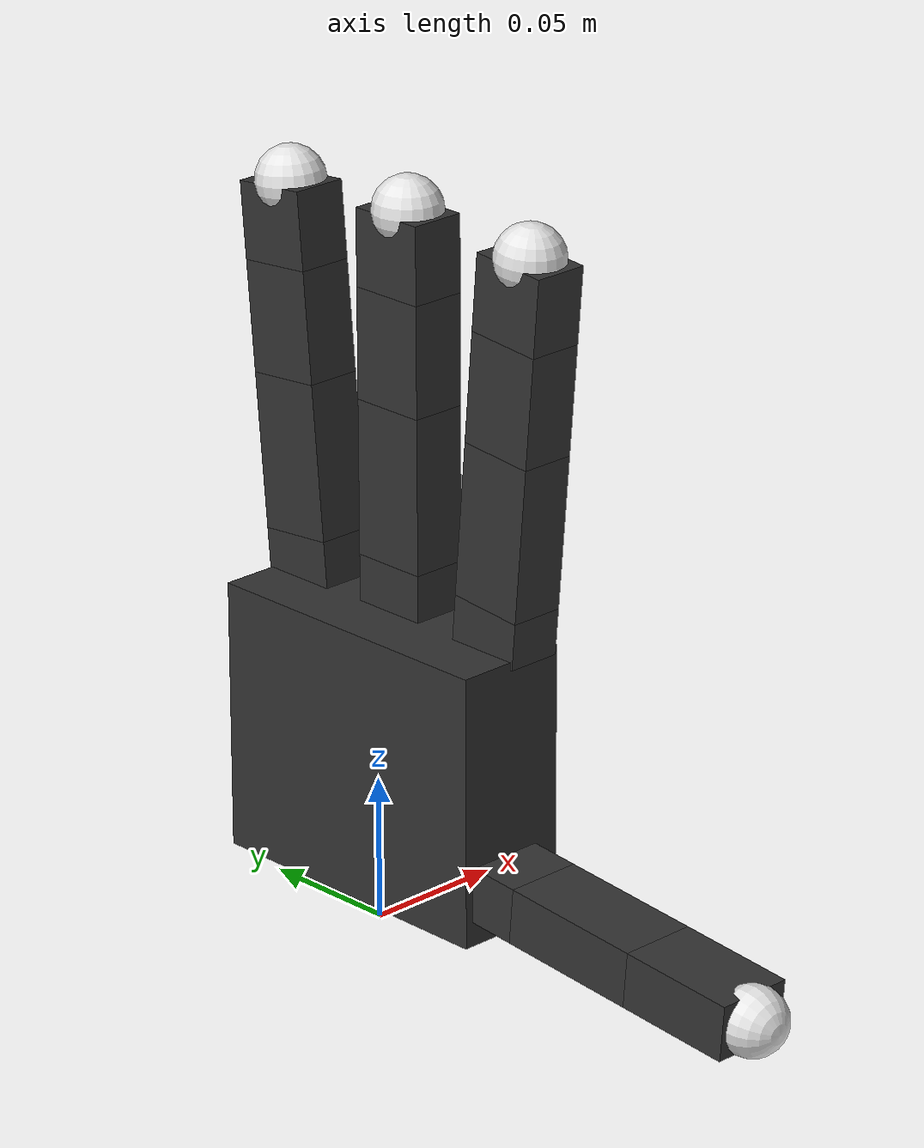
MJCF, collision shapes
<!-- original one, which is generated by ~/.mujoco/mujoco210/bin/compile allegro_left_amount_mujoco_compile.urdf allegro_left_amount.xml -->
<mujoco model="allegro_hand_left">
    <compiler angle="radian" meshdir="meshes/" />
    <size njmax="500" nconmax="100" />
    <asset>
        <mesh name="allegro_mount" file="allegro_mount.stl" />
        <mesh name="base_link_left" file="base_link_left.STL" />
        <mesh name="link_0.0" file="link_0.0.STL" />
        <mesh name="link_1.0" file="link_1.0.STL" />
        <mesh name="link_2.0" file="link_2.0.STL" />
        <mesh name="link_3.0" file="link_3.0.STL" />
        <mesh name="link_3.0_tip" file="link_3.0_tip.STL" />
        <mesh name="link_12.0_left" file="link_12.0_left.STL" />
        <mesh name="link_13.0" file="link_13.0.STL" />
        <mesh name="link_14.0" file="link_14.0.STL" />
        <mesh name="link_15.0" file="link_15.0.STL" />
        <mesh name="link_15.0_tip" file="link_15.0_tip.STL" />
    </asset>
    <worldbody>
        <geom pos="0.0425 -0.0425 0" quat="-0.707107 0 0.707107 0" type="mesh" contype="0" conaffinity="0" group="1" rgba="0.2 0.2 0.2 1" mesh="allegro_mount" />
        <geom size="0.0005 0.0005 0.0005" pos="0.0425 0 0.0425" quat="-0.707107 0 0.707107 0" type="box" rgba="0.2 0.2 0.2 1" />
        <geom pos="0.015 0 0.1075" quat="-0.707107 0.707107 0 0" type="mesh" contype="0" conaffinity="0" group="1" rgba="0.2 0.2 0.2 1" mesh="base_link_left" />
        <geom size="0.0204 0.0565 0.0475" pos="0.0057 0 0.06" quat="-1 0 0 0" type="box" rgba="0.2 0.2 0.2 1" />
        <body name="link_8" pos="0.015 0.0435 0.105958" quat="-0.999048 0.0436194 0 0">
            <inertial pos="0 0 0.0082" quat="0.5 0.5 -0.5 0.5" mass="0.0088396" diaginertia="8.40064e-07 7.55204e-07 4.8111e-07" />
            <joint name="joint_8" pos="0 0 0" axis="0 0 1" limited="true" range="-0.47 0.47" />
            <geom type="mesh" contype="0" conaffinity="0" group="1" rgba="0.2 0.2 0.2 1" mesh="link_0.0" />
            <geom size="0.0098 0.01375 0.0082" pos="0 0 0.0082" type="box" rgba="0.2 0.2 0.2 1" />
            <body name="link_9" pos="0 0 0.0164">
                <inertial pos="0 0 0.027" mass="0.029106" diaginertia="8.90704e-06 8.00454e-06 2.76606e-06" />
                <joint name="joint_9" pos="0 0 0" axis="0 1 0" limited="true" range="-0.196 1.61" />
                <geom type="mesh" contype="0" conaffinity="0" group="1" rgba="0.2 0.2 0.2 1" mesh="link_1.0" />
                <geom size="0.0098 0.01375 0.027" pos="0 0 0.027" type="box" rgba="0.2 0.2 0.2 1" />
                <body name="link_10" pos="0 0 0.054">
                    <inertial pos="0 0 0.0192" mass="0.0206976" diaginertia="3.8477e-06 3.20592e-06 1.96698e-06" />
                    <joint name="joint_10" pos="0 0 0" axis="0 1 0" limited="true" range="-0.174 1.709" />
                    <geom type="mesh" contype="0" conaffinity="0" group="1" rgba="0.2 0.2 0.2 1" mesh="link_2.0" />
                    <geom size="0.0098 0.01375 0.0192" pos="0 0 0.0192" type="box" rgba="0.2 0.2 0.2 1" />
                    <body name="link_11" pos="0 0 0.0384">
                        <inertial pos="0 0 0.0178175" mass="0.0216295" diaginertia="3.03714e-06 2.5909e-06 1.78459e-06" />
                        <joint name="joint_11" pos="0 0 0" axis="0 1 0" limited="true" range="-0.227 1.618" />
                        <geom type="mesh" contype="0" conaffinity="0" group="1" rgba="0.2 0.2 0.2 1" mesh="link_3.0" />
                        <geom size="0.0098 0.01375 0.01335" pos="0 0 0.01335" type="box" rgba="0.2 0.2 0.2 1" />
                        <geom pos="0 0 0.0267" type="mesh" contype="0" conaffinity="0" group="1" rgba="0.9 0.9 0.9 1" mesh="link_3.0_tip" />
                        <geom size="0.012" pos="0 0 0.0267" rgba="0.9 0.9 0.9 1" />
                    </body>
                </body>
            </body>
        </body>
        <body name="link_4" pos="0.015 0 0.1082" quat="-1 0 0 0">
            <inertial pos="0 0 0.0082" quat="0.5 0.5 -0.5 0.5" mass="0.0088396" diaginertia="8.40064e-07 7.55204e-07 4.8111e-07" />
            <joint name="joint_4" pos="0 0 0" axis="0 0 1" limited="true" range="-0.47 0.47" />
            <geom type="mesh" contype="0" conaffinity="0" group="1" rgba="0.2 0.2 0.2 1" mesh="link_0.0" />
            <geom size="0.0098 0.01375 0.0082" pos="0 0 0.0082" type="box" rgba="0.2 0.2 0.2 1" />
            <body name="link_5" pos="0 0 0.0164">
                <inertial pos="0 0 0.027" mass="0.029106" diaginertia="8.90704e-06 8.00454e-06 2.76606e-06" />
                <joint name="joint_5" pos="0 0 0" axis="0 1 0" limited="true" range="-0.196 1.61" />
                <geom type="mesh" contype="0" conaffinity="0" group="1" rgba="0.2 0.2 0.2 1" mesh="link_1.0" />
                <geom size="0.0098 0.01375 0.027" pos="0 0 0.027" type="box" rgba="0.2 0.2 0.2 1" />
                <body name="link_6" pos="0 0 0.054">
                    <inertial pos="0 0 0.0192" mass="0.0206976" diaginertia="3.8477e-06 3.20592e-06 1.96698e-06" />
                    <joint name="joint_6" pos="0 0 0" axis="0 1 0" limited="true" range="-0.174 1.709" />
                    <geom type="mesh" contype="0" conaffinity="0" group="1" rgba="0.2 0.2 0.2 1" mesh="link_2.0" />
                    <geom size="0.0098 0.01375 0.0192" pos="0 0 0.0192" type="box" rgba="0.2 0.2 0.2 1" />
                    <body name="link_7" pos="0 0 0.0384">
                        <inertial pos="0 0 0.0178175" mass="0.0216295" diaginertia="3.03714e-06 2.5909e-06 1.78459e-06" />
                        <joint name="joint_7" pos="0 0 0" axis="0 1 0" limited="true" range="-0.227 1.618" />
                        <geom type="mesh" contype="0" conaffinity="0" group="1" rgba="0.2 0.2 0.2 1" mesh="link_3.0" />
                        <geom size="0.0098 0.01375 0.01335" pos="0 0 0.01335" type="box" rgba="0.2 0.2 0.2 1" />
                        <geom pos="0 0 0.0267" type="mesh" contype="0" conaffinity="0" group="1" rgba="0.9 0.9 0.9 1" mesh="link_3.0_tip" />
                        <geom size="0.012" pos="0 0 0.0267" rgba="0.9 0.9 0.9 1" />
                    </body>
                </body>
            </body>
        </body>
        <body name="link_0" pos="0.015 -0.0435 0.105958" quat="-0.999048 -0.0436194 0 0">
            <inertial pos="0 0 0.0082" quat="0.5 0.5 -0.5 0.5" mass="0.0088396" diaginertia="8.40064e-07 7.55204e-07 4.8111e-07" />
            <joint name="joint_0" pos="0 0 0" axis="0 0 1" limited="true" range="-0.47 0.47" />
            <geom type="mesh" contype="0" conaffinity="0" group="1" rgba="0.2 0.2 0.2 1" mesh="link_0.0" />
            <geom size="0.0098 0.01375 0.0082" pos="0 0 0.0082" type="box" rgba="0.2 0.2 0.2 1" />
            <body name="link_1" pos="0 0 0.0164">
                <inertial pos="0 0 0.027" mass="0.029106" diaginertia="8.90704e-06 8.00454e-06 2.76606e-06" />
                <joint name="joint_1" pos="0 0 0" axis="0 1 0" limited="true" range="-0.196 1.61" />
                <geom type="mesh" contype="0" conaffinity="0" group="1" rgba="0.2 0.2 0.2 1" mesh="link_1.0" />
                <geom size="0.0098 0.01375 0.027" pos="0 0 0.027" type="box" rgba="0.2 0.2 0.2 1" />
                <body name="link_2" pos="0 0 0.054">
                    <inertial pos="0 0 0.0192" mass="0.0206976" diaginertia="3.8477e-06 3.20592e-06 1.96698e-06" />
                    <joint name="joint_2" pos="0 0 0" axis="0 1 0" limited="true" range="-0.174 1.709" />
                    <geom type="mesh" contype="0" conaffinity="0" group="1" rgba="0.2 0.2 0.2 1" mesh="link_2.0" />
                    <geom size="0.0098 0.01375 0.0192" pos="0 0 0.0192" type="box" rgba="0.2 0.2 0.2 1" />
                    <body name="link_3" pos="0 0 0.0384">
                        <inertial pos="0 0 0.0178175" mass="0.0216295" diaginertia="3.03714e-06 2.5909e-06 1.78459e-06" />
                        <joint name="joint_3" pos="0 0 0" axis="0 1 0" limited="true" range="-0.227 1.618" />
                        <geom type="mesh" contype="0" conaffinity="0" group="1" rgba="0.2 0.2 0.2 1" mesh="link_3.0" />
                        <geom size="0.0098 0.01375 0.01335" pos="0 0 0.01335" type="box" rgba="0.2 0.2 0.2 1" />
                        <geom pos="0 0 0.0267" type="mesh" contype="0" conaffinity="0" group="1" rgba="0.9 0.9 0.9 1" mesh="link_3.0_tip" />
                        <geom size="0.012" pos="0 0 0.0267" rgba="0.9 0.9 0.9 1" />
                    </body>
                </body>
            </body>
        </body>
        <body name="link_12" pos="-0.0032 -0.019333 0.061513" quat="-0.477714 -0.521334 0.521334 -0.477714">
            <inertial pos="-0.0179 -0.009 0.0145" quat="0.707107 0 0 0.707107" mass="0.0553826" diaginertia="1.54697e-05 1.48898e-05 1.12502e-05" />
            <joint name="joint_12" pos="0 0 0" axis="1 0 0" limited="true" range="0.263 1.396" />
            <geom quat="8.94897e-10 1 0 0" type="mesh" contype="0" conaffinity="0" group="1" rgba="0.2 0.2 0.2 1" mesh="link_12.0_left" />
            <geom size="0.0179 0.017 0.02275" pos="-0.0179 -0.009 0.0145" type="box" rgba="0.2 0.2 0.2 1" />
            <body name="link_13" pos="-0.027 -0.005 0.0399">
                <inertial pos="0 0 0.00885" quat="0.5 0.5 -0.5 0.5" mass="0.0095403" diaginertia="9.06654e-07 8.50311e-07 5.5449e-07" />
                <joint name="joint_13" pos="0 0 0" axis="0 0 -1" limited="true" range="-0.105 1.163" />
                <geom type="mesh" contype="0" conaffinity="0" group="1" rgba="0.2 0.2 0.2 1" mesh="link_13.0" />
                <geom size="0.0098 0.01375 0.00885" pos="0 0 0.00885" type="box" rgba="0.2 0.2 0.2 1" />
                <body name="link_14" pos="0 0 0.0177">
                    <inertial pos="0 0 0.0257" mass="0.0277046" diaginertia="7.8455e-06 6.98645e-06 2.63288e-06" />
                    <joint name="joint_14" pos="0 0 0" axis="0 1 0" limited="true" range="-0.189 1.644" />
                    <geom type="mesh" contype="0" conaffinity="0" group="1" rgba="0.2 0.2 0.2 1" mesh="link_14.0" />
                    <geom size="0.0098 0.01375 0.0257" pos="0 0 0.0257" type="box" rgba="0.2 0.2 0.2 1" />
                    <body name="link_15" pos="0 0 0.0514">
                        <inertial pos="0 0 0.0262465" mass="0.0300379" diaginertia="7.71099e-06 7.00403e-06 2.58367e-06" />
                        <joint name="joint_15" pos="0 0 0" axis="0 1 0" limited="true" range="-0.162 1.719" />
                        <geom type="mesh" contype="0" conaffinity="0" group="1" rgba="0.2 0.2 0.2 1" mesh="link_15.0" />
                        <geom size="0.0098 0.01375 0.02115" pos="0 0 0.02115" type="box" rgba="0.2 0.2 0.2 1" />
                        <geom pos="0 0 0.0423" type="mesh" contype="0" conaffinity="0" group="1" rgba="0.9 0.9 0.9 1" mesh="link_15.0_tip" />
                        <geom size="0.012" pos="0 0 0.0423" rgba="0.9 0.9 0.9 1" />
                    </body>
                </body>
            </body>
        </body>
    </worldbody>
</mujoco>
